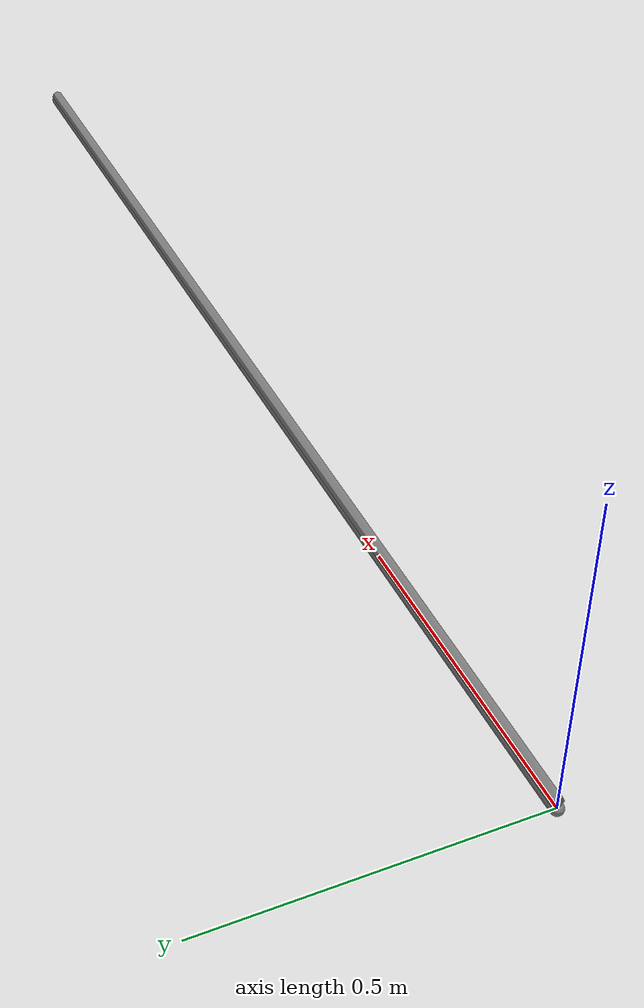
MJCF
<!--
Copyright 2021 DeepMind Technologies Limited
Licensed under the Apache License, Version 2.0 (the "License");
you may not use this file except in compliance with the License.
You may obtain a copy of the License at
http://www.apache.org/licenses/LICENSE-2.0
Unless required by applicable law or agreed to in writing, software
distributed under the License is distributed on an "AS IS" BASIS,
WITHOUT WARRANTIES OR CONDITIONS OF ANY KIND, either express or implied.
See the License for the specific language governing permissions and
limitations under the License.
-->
<mujoco model="2-link 1-muscle arm">
  <worldbody>
    <body>
      <geom type="capsule" size="0.01" fromto="0 0 0 1 0 0"/>
      <site name="s0" pos="0 0 0.01"/>
      <joint type="slide" axis="1 0 0"/>
      <body pos="1 0 0">
        <geom type="capsule" size="0.01" fromto="0 0 0 1 0 0"/>
        <site name="s1" pos="1 0 0.01"/>
      </body>
    </body>
  </worldbody>
  <tendon>
    <spatial name="tendon" width="0.01">
      <site site="s0"/>
      <site site="s1"/>
    </spatial>
  </tendon>
  <actuator>
    <muscle tendon="tendon" lengthrange="0 2" force="1" ctrllimited="true" ctrlrange="0 1"/>
  </actuator>
</mujoco>
